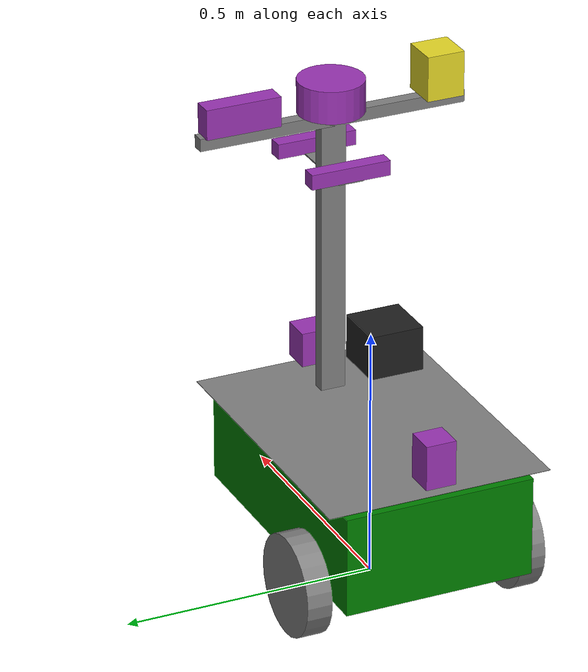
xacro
<?xml version="1.0"?>
<robot name="my_robot" xmlns:xacro="http://www.ros.org/wiki/xacro">
    <xacro:include filename="common_properties.xacro"/>
    <xacro:include filename="mobile_base.xacro"/>
    <xacro:include filename="mobile_base_gazebo.xacro"/>
    <xacro:include filename="rover_platform.xacro"/>
    <xacro:include filename="rover_sensors.xacro"/>

</robot>

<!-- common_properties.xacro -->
<robot xmlns:xacro="http://www.ros.org/wiki/xacro">
    <material name="green">
        <color rgba="0 0.5 0 1"/>
    </material>
    <material name="grey">
        <color rgba="0.5 0.5 0.5 1"/>
    </material>
    <material name="blue">
        <color rgba="0 0 1 1"/>
    </material>
    <xacro:macro  name="box_inertia" params="m l w h xyz rpy">
        <inertial>
            <origin xyz="${xyz}" rpy="${rpy}"/>
            <mass value="${m}"/>
            <inertia ixx="${(m/12)*(h*h + l*l)}" ixy="0" ixz="0"
                     iyy="${(m/12)*(w*w + l*l)}" iyz="0"
                     izz="${(m/12)*(h*h + l*l)}"/>
        </inertial>
    </xacro:macro>

    <xacro:macro  name="cylinder_inertia" params="m r h xyz rpy">
        <inertial>
            <origin xyz="${xyz}" rpy="${rpy}"/>
            <mass value="${m}"/>
            <inertia ixx="${(m/12)*(3*r*r + h*h)}" ixy="0" ixz="0"
                     iyy="${(m/12)*(3*r*r + h*h)}" iyz="0"
                     izz="${(m/12)*(r*r)}"/>
        </inertial>
    </xacro:macro>
    <xacro:macro  name="sphere_inertia" params="m r xyz rpy">
        <inertial>
            <origin xyz="${xyz}" rpy="${rpy}"/>
            <mass value="${m}"/>
            <inertia ixx="${(2/5)*m*r*r}" ixy="0" ixz="0"
                     iyy="${(2/5)*m* r*r}" iyz="0"
                     izz="${(2/5)*m*r*r}"/>
        </inertial>
    </xacro:macro>

</robot>

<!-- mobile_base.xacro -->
<robot xmlns:xacro="http://www.ros.org/wiki/xacro">
    <xacro:property name="base_length" value="0.6"/>
    <xacro:property name="base_width" value="0.38"/>
    <xacro:property name="base_height" value="0.2"/>
    <xacro:property name="wheel_length" value="0.08"/>

   <link name="base_footprint"/>

    <link name="base_link">
        <visual>
            <geometry>
                <box size="${base_length} ${base_width} ${base_height}"/>
            </geometry>
            <origin xyz="0 0 0.1" rpy="0 0 0"/>
            <material name="green"/>
        </visual>
        <inertial>
             <mass value="60" />
                <origin xyz="0.00381548 -0.00072475 0.13654259" rpy="0 0 0" />
                <inertia ixx="0.0010966742070308941" ixy="-3.7461692282368137e-07" ixz="1.9558543577840812e-07"
                        iyy="0.0017930350217347623" iyz="2.0532496529124063e-07"
                        izz="0.0025355228375863507" />
        </inertial>
    </link>

    <link name="carter_wheel_link">
        <visual>
            <geometry>
                <sphere radius="0.05" length="0.1"/>
            </geometry>
            <origin xyz="0 0 0" rpy="1.57 0 0"/>
            <material name="grey"/>
        </visual>
        <collision>
            <geometry>
                <sphere radius="0.05" length="0.1"/>
            </geometry>
            <origin xyz="0 0 0" rpy="1.57 0 0"/>
        </collision>
        <xacro:sphere_inertia m="3" r="0.05" xyz="0 0 0" rpy="0 0 0"/>

    </link>

    <xacro:macro name="wheel_link" params="prefix">

    <link name="${prefix}_wheel_link">
            <visual>
                <geometry>
                    <cylinder radius="0.1" length="0.05"/>
                </geometry>
                <origin xyz="0 0 0" rpy="${pi/ 2.0} 0 0"/>
                    pi = 180 = 3.14
                    pi/2 = 90 = 1.57
                <material name="grey"/>
            </visual>
            <collision>
                <geometry>
                    <cylinder radius="0.1" length="0.05"/>
                </geometry>
                <origin xyz="0 0 0" rpy="${pi/ 2.0} 0 0"/>
                    pi = 180 = 3.14
                    pi/2 = 90 = 1.57
            </collision>
            <xacro:cylinder_inertia m="6" r="0.1" h="0.05" xyz="0 0 0" rpy="${pi/ 2.0} 0 0"/>
        </link>
    </xacro:macro>

    <xacro:wheel_link prefix="right"/>
    <xacro:wheel_link prefix="left"/>

    <joint name="base_footprint_link" type="fixed">
        <parent link="base_footprint"/>
        <child link="base_link"/>
        <origin xyz="0 0 0.1" rpy="0 0 0"/>
    </joint>

    <joint name="base_carter_wheel_joint" type="fixed">
        <parent link="base_link"/>
        <child link="carter_wheel_link"/>
        <origin xyz="${base_length / 3.0} 0 -0.05" rpy="0 0 0"/>
        <axis xyz="0 0 0"/>
    </joint>

    <joint name="base_right_wheel_joint" type="continuous">
        <parent link="base_link"/>
        <child link="right_wheel_link"/>
        <origin xyz="${-base_length / 4.0}  ${-(base_width/ 2.0) - 0.03} 0" rpy="0 0 0"/>
        <axis xyz="0 1 0"/>
    </joint>

    <joint name="base_left_wheel_joint" type="continuous">
        <parent link="base_link"/>
        <child link="left_wheel_link"/>
        <origin xyz="${-base_length / 4.0}  ${(base_width / 2.0) + 0.03} 0" rpy="0 0 0"/>
        <axis xyz="0 1 0"/>
    </joint>
</robot>

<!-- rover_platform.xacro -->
<robot xmlns:xacro="http://www.ros.org/wiki/xacro">

    <xacro:property name="platform_length" value="0.60" />
    <xacro:property name="platform_width" value="0.45" />
    <xacro:property name="platform_height" value="0.001" />

    <link name="platform_link">
        <visual>
            <geometry>
                <box size="${platform_length} ${platform_width} ${platform_height}" />
            </geometry>
            <origin xyz="0 0 ${platform_height / 2}" rpy="0 0 0" />
            <material name="grey" />
        </visual>
        <xacro:box_inertia m="4.0" l="${platform_length}" w="${platform_width}" h="${platform_height}" xyz="0 0 ${platform_height / 2}" rpy="0 0 0" />
    </link>

    <link name="vertical_gps_stand">
        <visual>
            <geometry>
                <box size="0.025 0.05 0.56" />
            </geometry>
            <origin xyz="0 0 0.28" rpy="0 0 0" />
            <material name="grey" />
        </visual>
        <xacro:box_inertia m="2.5" l="0.025" w="0.05" h="0.56" xyz="0 0 0.28" rpy="0 0 0" />
    </link>

    <link name="horizontal_gps_stand">
        <visual>
            <geometry>
                <box size="0.025 0.54 0.025" />
            </geometry>
            <origin xyz="0 0 0" rpy="0 0 0" />
            <material name="grey" />
        </visual>
    </link>

    <link name="horizontal_camera_stand">
        <visual>
            <geometry>
                <box size="0.18 0.05 0.0025" />
            </geometry>
            <origin xyz="0 0 0" rpy="0 0 0" />
            <material name="grey" />
        </visual>
    </link>

    <link name="jetson">
        <visual>
            <geometry>
                <box size="0.11 0.11 0.09" />
            </geometry>
            <origin xyz="0 0 0.0225" rpy="0 0 0" />
            <material name="black" />
        </visual>
    </link>

    <link name="emergency_stop">
        <visual>
            <geometry>
                <box size="0.075 0.075 0.09" />
            </geometry>
            <origin xyz="0 0 0.0575" rpy="0 0 0" />
            <material name="yellow" />
        </visual>
    </link>

    <joint name="emergency_link" type="fixed">
        <parent link="horizontal_gps_stand" />
        <child link="emergency_stop" />
        <origin xyz="0 -0.219 0" rpy="0 0 0"/>
    </joint>

    <joint name="base_platform_joint" type="fixed">
        <parent link="base_link" />
        <child link="platform_link" />
        <origin xyz="0 0 0.210" rpy="0 0 0"/>
    </joint>

    <joint name="base_vertical_gps_stand_joint" type="fixed">
        <parent link="platform_link" />
        <child link="vertical_gps_stand" />
        <origin xyz="0.1775 0 0" rpy="0 0 0"/>
    </joint>

    <joint name="vertical_hroizontal_gps_stand_joint" type="fixed">
        <parent link="vertical_gps_stand" />
        <child link="horizontal_gps_stand" />
        <origin xyz="0 0 0.56" rpy="0 0 0"/>
    </joint>

    <joint name="vertical_hroizontal_camera_stand_joint" type="fixed">
        <parent link="vertical_gps_stand" />
        <child link="horizontal_camera_stand" />
        <origin xyz="0 0 0.465" rpy="0 0 0"/>
    </joint>

    <joint name="platform_jetson_joint" type="fixed">
        <parent link="platform_link" />
        <child link="jetson" />
        <origin xyz="0.19 -0.12 0.04" rpy="0 0 0"/>
    </joint>
</robot>

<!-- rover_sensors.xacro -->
<robot xmlns:xacro="http://www.ros.org/wiki/xacro">

    <link name="lidar_front">
        <visual>
            <geometry>
                <box size="0.06 0.06 0.07" />
            </geometry>
            <origin xyz="0 0 0.0525" rpy="0 0 3.14" />
            <material name="purple" />
        </visual>
        <xacro:box_inertia m="0.1" l="0.06" w="0.06" h="0.6"
                           xyz="0 0 0" rpy="0 0 0"/>
    </link>

    <link name="lidar_back">
        <visual>
            <geometry>
                <box size="0.06 0.06 0.09" />
            </geometry>
            <origin xyz="0 0 0.06" rpy="0 0 0" />
            <material name="purple" />
        </visual>
        <xacro:box_inertia m="0.1" l="0.06" w="0.06" h="0.6"
                           xyz="0 0 0" rpy="0 0 0"/>
    </link>

    <link name="camera_front">
        <visual>
            <geometry>
                <box size="0.03 0.16 0.03" />
            </geometry>
            <origin xyz="0 0 0.015" rpy="0 0 0" />
            <material name="purple" />
        </visual>
        <collision>
            <geometry>
                <box size="0.03 0.16 0.03"/>
            </geometry>
        </collision>
        <xacro:box_inertia m="0.1" l="0.03" w="0.16" h="0.03"
                           xyz="0 0 0" rpy="0 0 0"/>
    </link>

    <link name="camera_back">
        <visual>
            <geometry>
                <box size="0.03 0.16 0.03" />
            </geometry>
            <origin xyz="0 0 0.015" rpy="0 0 0" />
            <material name="purple" />
        </visual>
    </link>

    <link name="gps_antena">
        <visual>
            <geometry>
                <cylinder radius="0.065" length="0.065" />
            </geometry>
            <origin xyz="0 0 0.035" rpy="0 0 0" />
            <material name="purple" />
        </visual>
    </link>

    <link name="lte_antena">
        <visual>
            <geometry>
                <box size="0.04 0.15 0.06" />
            </geometry>
            <origin xyz="0 0 0.04" rpy="0 0 0" />
            <material name="purple" />
        </visual>
    </link>

    <joint name="lte_horizontal_joint" type="fixed">
        <parent link="horizontal_gps_stand" />
        <child link="lte_antena" />
        <origin xyz="0 0.185 0.00125" rpy="0 0 0"/>
    </joint>

    <joint name="lidar_front_platform_joint" type="fixed">
        <parent link="platform_link" />
        <child link="lidar_front" />
        <origin xyz="0.27 0 0" rpy="0 0 0"/>
    </joint>

    <joint name="lidar_back_platform_joint" type="fixed">
        <parent link="platform_link" />
        <child link="lidar_back" />
        <origin xyz="-0.27 0 0" rpy="0 0 0"/>
    </joint>

    <joint name="camera_front_platform_joint" type="fixed">
        <parent link="horizontal_camera_stand" />
        <child link="camera_front" />
        <origin xyz="0.075 0 0" rpy="0 0 0"/>
    </joint>

    <joint name="camera_back_platform_joint" type="fixed">
        <parent link="horizontal_camera_stand" />
        <child link="camera_back" />
        <origin xyz="-0.075 0 0" rpy="0 0 0"/>
    </joint>

    <joint name="gps_antena_horizontal_stand_joint" type="fixed">
        <parent link="horizontal_gps_stand" />
        <child link="gps_antena" />
        <origin xyz="0 0 0.0125" rpy="0 0 0"/>
    </joint>

</robot>
